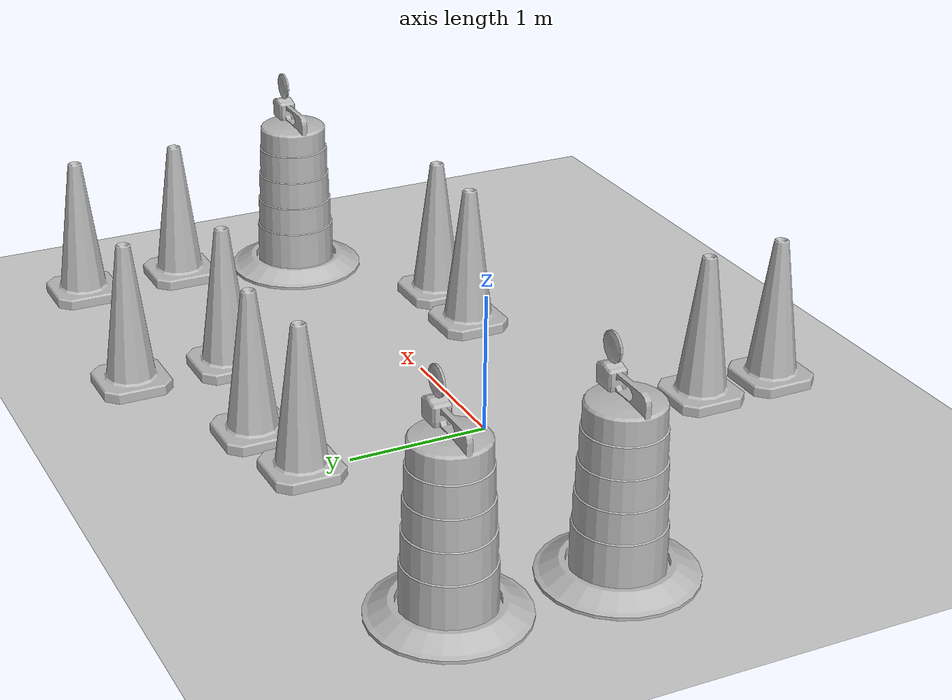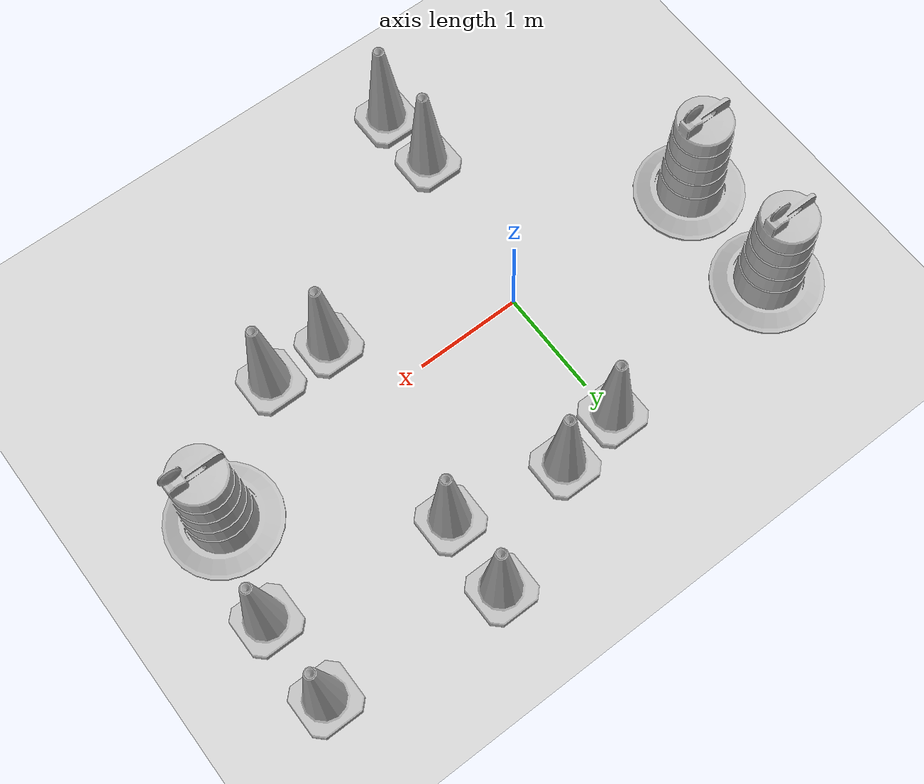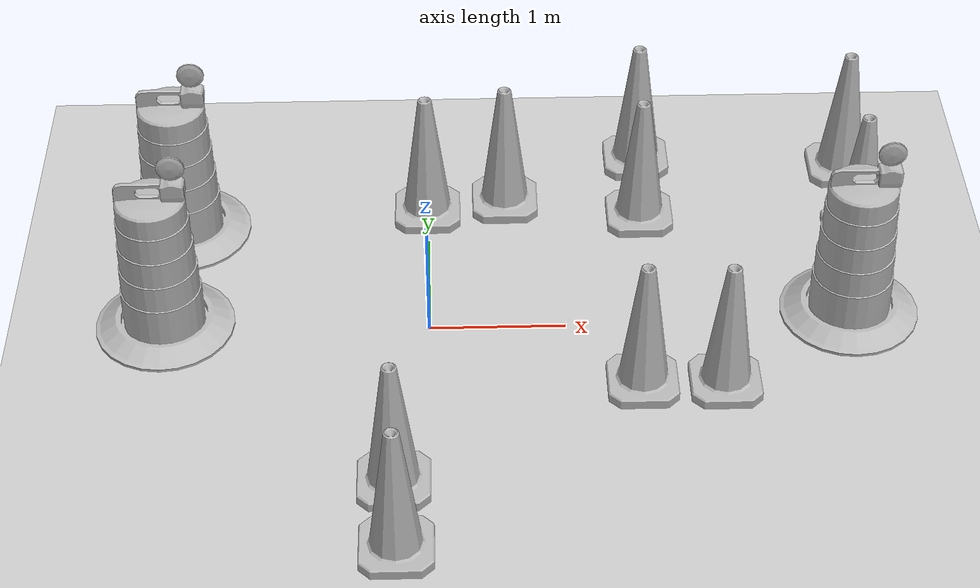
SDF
<sdf version="1.7">
 <world name="default">
  <light name="sun" type="directional">
   <pose>0 0 10 0 -0 0</pose>
   <diffuse>0.8 0.8 0.8 1</diffuse>
   <specular>0.2 0.2 0.2 1</specular>
   <attenuation>
    <range>1000</range>
    <constant>0.9</constant>
    <linear>0.01</linear>
    <quadratic>0.001</quadratic>
   </attenuation>
   <direction>-0.5 0.1 -0.9</direction>
   <spot><inner_angle>0</inner_angle><outer_angle>0</outer_angle><falloff>0</falloff></spot>
  </light>
  <model name="ground_plane">
   <static>1</static>
   <link name="link">
    <collision name="collision">
     <geometry><plane><normal>0 0 1</normal><size>100 100</size></plane></geometry>
     <surface>
      <contact><collide_bitmask>65535</collide_bitmask></contact>
      <friction><ode><mu>100</mu><mu2>50</mu2></ode></friction>
     </surface>
    </collision>
    <visual name="visual">
     <cast_shadows>0</cast_shadows>
     <geometry><plane><normal>0 0 1</normal><size>100 100</size></plane></geometry>
     <material>
      <script><uri>file://media/materials/scripts/gazebo.material</uri><name>Gazebo/Grey</name></script>
     </material>
    </visual>
   </link>
  </model>
  <gravity>0 0 -9.8</gravity>
  <magnetic_field>6e-06 2.3e-05 -4.2e-05</magnetic_field>
  <atmosphere type="adiabatic"/>
  <physics type="ode">
   <max_step_size>0.001</max_step_size>
   <real_time_factor>1</real_time_factor>
   <real_time_update_rate>1000</real_time_update_rate>
  </physics>
  <scene><ambient>0.4 0.4 0.4 1</ambient><background>0.7 0.7 0.7 1</background><shadows>1</shadows></scene>
  <audio><device>default</device></audio>
  <spherical_coordinates>
   <surface_model>EARTH_WGS84</surface_model>
   <latitude_deg>0</latitude_deg>
   <longitude_deg>0</longitude_deg>
   <elevation>0</elevation>
   <heading_deg>0</heading_deg>
  </spherical_coordinates>
  <model name="Construction Barrel">
   <link name="link">
    <inertial>
     <pose>0 0 0.4 0 -0 0</pose>
     <mass>500</mass>
     <inertia><ixx>51.2096</ixx><iyy>51.2096</iyy><izz>25</izz><ixy>0</ixy><ixz>0</ixz><iyz>0</iyz></inertia>
    </inertial>
    <collision name="collision">
     <geometry><mesh><uri>model://construction_barrel/meshes/construction_barrel.dae</uri></mesh></geometry>
    </collision>
    <visual name="visual">
     <geometry><mesh><uri>model://construction_barrel/meshes/construction_barrel.dae</uri></mesh></geometry>
    </visual>
   </link>
   <pose>-1.9386 0.093088 -0 0 0 -2.2e-05</pose>
  </model>
  <model name="Construction Cone">
   <link name="link">
    <collision name="collision">
     <geometry>
      <mesh><scale>10 10 10</scale><uri>model://construction_cone/meshes/construction_cone.dae</uri></mesh>
     </geometry>
    </collision>
    <visual name="visual">
     <geometry>
      <mesh><scale>10 10 10</scale><uri>model://construction_cone/meshes/construction_cone.dae</uri></mesh>
     </geometry>
    </visual>
    <inertial>
     <inertia><ixx>1</ixx><ixy>0</ixy><ixz>0</ixz><iyy>1</iyy><iyz>0</iyz><izz>1</izz></inertia>
     <mass>1</mass>
    </inertial>
   </link>
   <pose>-0.241343 -1.58401 -0 0 -0 0</pose>
  </model>
  <model name="Construction Barrel_0">
   <link name="link">
    <inertial>
     <pose>0 0 0.4 0 -0 0</pose>
     <mass>500</mass>
     <inertia><ixx>51.2096</ixx><iyy>51.2096</iyy><izz>25</izz><ixy>0</ixy><ixz>0</ixz><iyz>0</iyz></inertia>
    </inertial>
    <collision name="collision">
     <geometry><mesh><uri>model://construction_barrel/meshes/construction_barrel.dae</uri></mesh></geometry>
    </collision>
    <visual name="visual">
     <geometry><mesh><uri>model://construction_barrel/meshes/construction_barrel.dae</uri></mesh></geometry>
    </visual>
   </link>
   <pose>-1.88709 1.2027 -0 0 0 -2e-05</pose>
  </model>
  <model name="Construction Cone_0">
   <link name="link">
    <collision name="collision">
     <geometry>
      <mesh><scale>10 10 10</scale><uri>model://construction_cone/meshes/construction_cone.dae</uri></mesh>
     </geometry>
    </collision>
    <visual name="visual">
     <geometry>
      <mesh><scale>10 10 10</scale><uri>model://construction_cone/meshes/construction_cone.dae</uri></mesh>
     </geometry>
    </visual>
    <inertial>
     <inertia><ixx>1</ixx><ixy>0</ixy><ixz>0</ixz><iyy>1</iyy><iyz>0</iyz><izz>1</izz></inertia>
     <mass>1</mass>
    </inertial>
   </link>
   <pose>-0.218429 -2.18831 -0 0 -1e-06 0</pose>
  </model>
  <model name="Construction Cone_1">
   <link name="link">
    <collision name="collision">
     <geometry>
      <mesh><scale>10 10 10</scale><uri>model://construction_cone/meshes/construction_cone.dae</uri></mesh>
     </geometry>
    </collision>
    <visual name="visual">
     <geometry>
      <mesh><scale>10 10 10</scale><uri>model://construction_cone/meshes/construction_cone.dae</uri></mesh>
     </geometry>
    </visual>
    <inertial>
     <inertia><ixx>1</ixx><ixy>0</ixy><ixz>0</ixz><iyy>1</iyy><iyz>0</iyz><izz>1</izz></inertia>
     <mass>1</mass>
    </inertial>
   </link>
   <pose>1.52155 -0.639843 0 -0 -0 -0</pose>
  </model>
  <model name="Construction Cone_2">
   <link name="link">
    <collision name="collision">
     <geometry>
      <mesh><scale>10 10 10</scale><uri>model://construction_cone/meshes/construction_cone.dae</uri></mesh>
     </geometry>
    </collision>
    <visual name="visual">
     <geometry>
      <mesh><scale>10 10 10</scale><uri>model://construction_cone/meshes/construction_cone.dae</uri></mesh>
     </geometry>
    </visual>
    <inertial>
     <inertia><ixx>1</ixx><ixy>0</ixy><ixz>0</ixz><iyy>1</iyy><iyz>0</iyz><izz>1</izz></inertia>
     <mass>1</mass>
    </inertial>
   </link>
   <pose>2.11169 -0.65891 -0 1e-06 -0 0</pose>
  </model>
  <model name="Construction Cone_3">
   <link name="link">
    <collision name="collision">
     <geometry>
      <mesh><scale>10 10 10</scale><uri>model://construction_cone/meshes/construction_cone.dae</uri></mesh>
     </geometry>
    </collision>
    <visual name="visual">
     <geometry>
      <mesh><scale>10 10 10</scale><uri>model://construction_cone/meshes/construction_cone.dae</uri></mesh>
     </geometry>
    </visual>
    <inertial>
     <inertia><ixx>1</ixx><ixy>0</ixy><ixz>0</ixz><iyy>1</iyy><iyz>0</iyz><izz>1</izz></inertia>
     <mass>1</mass>
    </inertial>
   </link>
   <pose>-0.009663 1.34988 -0 -0 -0 -0</pose>
  </model>
  <model name="Construction Cone_4">
   <link name="link">
    <collision name="collision">
     <geometry>
      <mesh><scale>10 10 10</scale><uri>model://construction_cone/meshes/construction_cone.dae</uri></mesh>
     </geometry>
    </collision>
    <visual name="visual">
     <geometry>
      <mesh><scale>10 10 10</scale><uri>model://construction_cone/meshes/construction_cone.dae</uri></mesh>
     </geometry>
    </visual>
    <inertial>
     <inertia><ixx>1</ixx><ixy>0</ixy><ixz>0</ixz><iyy>1</iyy><iyz>0</iyz><izz>1</izz></inertia>
     <mass>1</mass>
    </inertial>
   </link>
   <pose>0.592687 1.45803 -0 0 0 -0.003055</pose>
  </model>
  <model name="Construction Barrel_1">
   <link name="link">
    <inertial>
     <pose>0 0 0.4 0 -0 0</pose>
     <mass>500</mass>
     <inertia><ixx>51.2096</ixx><iyy>51.2096</iyy><izz>25</izz><ixy>0</ixy><ixz>0</ixz><iyz>0</iyz></inertia>
    </inertial>
    <collision name="collision">
     <geometry><mesh><uri>model://construction_barrel/meshes/construction_barrel.dae</uri></mesh></geometry>
    </collision>
    <visual name="visual">
     <geometry><mesh><uri>model://construction_barrel/meshes/construction_barrel.dae</uri></mesh></geometry>
    </visual>
   </link>
   <pose>3.1058 0.113125 -0 0 -0 -1e-05</pose>
  </model>
  <model name="Construction Cone_5">
   <link name="link">
    <collision name="collision">
     <geometry>
      <mesh><scale>10 10 10</scale><uri>model://construction_cone/meshes/construction_cone.dae</uri></mesh>
     </geometry>
    </collision>
    <visual name="visual">
     <geometry>
      <mesh><scale>10 10 10</scale><uri>model://construction_cone/meshes/construction_cone.dae</uri></mesh>
     </geometry>
    </visual>
    <inertial>
     <inertia><ixx>1</ixx><ixy>0</ixy><ixz>0</ixz><iyy>1</iyy><iyz>0</iyz><izz>1</izz></inertia>
     <mass>1</mass>
    </inertial>
   </link>
   <pose>3.29575 1.0331 -0 0 -0 0</pose>
  </model>
  <model name="Construction Cone_6">
   <link name="link">
    <collision name="collision">
     <geometry>
      <mesh><scale>10 10 10</scale><uri>model://construction_cone/meshes/construction_cone.dae</uri></mesh>
     </geometry>
    </collision>
    <visual name="visual">
     <geometry>
      <mesh><scale>10 10 10</scale><uri>model://construction_cone/meshes/construction_cone.dae</uri></mesh>
     </geometry>
    </visual>
    <inertial>
     <inertia><ixx>1</ixx><ixy>0</ixy><ixz>0</ixz><iyy>1</iyy><iyz>0</iyz><izz>1</izz></inertia>
     <mass>1</mass>
    </inertial>
   </link>
   <pose>3.27825 1.83196 -1e-06 2e-06 2e-06 0</pose>
  </model>
  <model name="Construction Cone_7">
   <link name="link">
    <collision name="collision">
     <geometry>
      <mesh><scale>10 10 10</scale><uri>model://construction_cone/meshes/construction_cone.dae</uri></mesh>
     </geometry>
    </collision>
    <visual name="visual">
     <geometry>
      <mesh><scale>10 10 10</scale><uri>model://construction_cone/meshes/construction_cone.dae</uri></mesh>
     </geometry>
    </visual>
    <inertial>
     <inertia><ixx>1</ixx><ixy>0</ixy><ixz>0</ixz><iyy>1</iyy><iyz>0</iyz><izz>1</izz></inertia>
     <mass>1</mass>
    </inertial>
   </link>
   <pose>1.63338 1.25939 -1e-06 2e-06 2e-06 0</pose>
  </model>
  <model name="Construction Cone_8">
   <link name="link">
    <collision name="collision">
     <geometry>
      <mesh><scale>10 10 10</scale><uri>model://construction_cone/meshes/construction_cone.dae</uri></mesh>
     </geometry>
    </collision>
    <visual name="visual">
     <geometry>
      <mesh><scale>10 10 10</scale><uri>model://construction_cone/meshes/construction_cone.dae</uri></mesh>
     </geometry>
    </visual>
    <inertial>
     <inertia><ixx>1</ixx><ixy>0</ixy><ixz>0</ixz><iyy>1</iyy><iyz>0</iyz><izz>1</izz></inertia>
     <mass>1</mass>
    </inertial>
   </link>
   <pose>1.65524 1.97378 -0 0 -0 0</pose>
  </model>
 </world>
</sdf>
